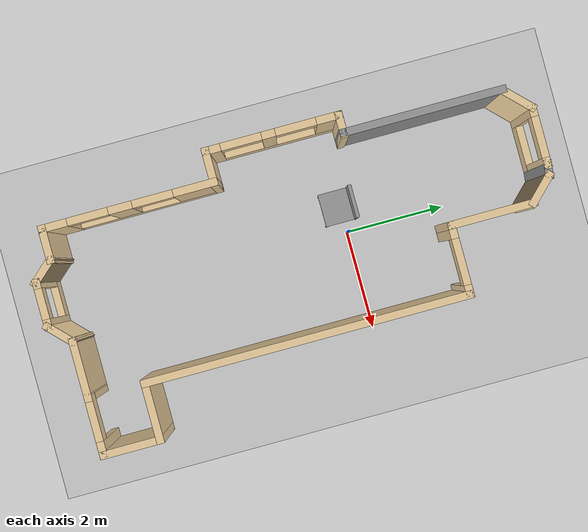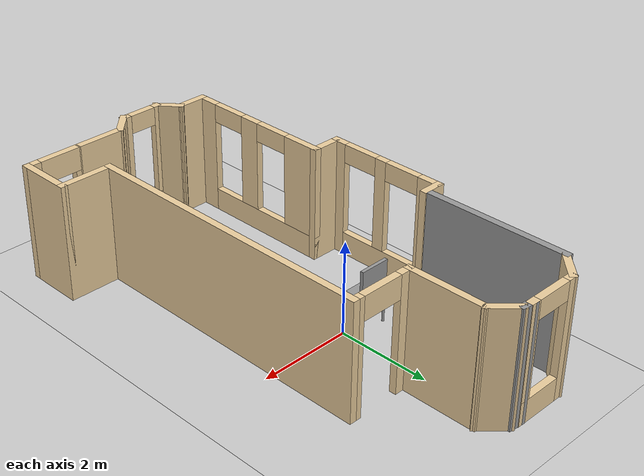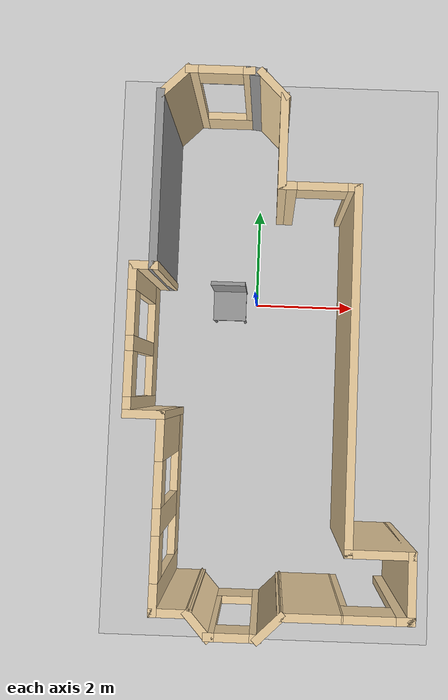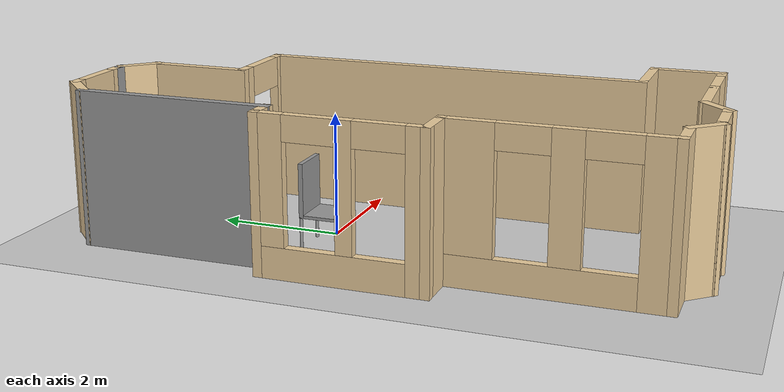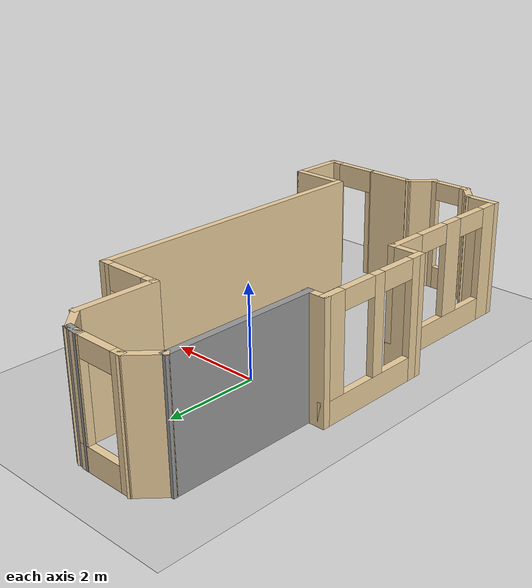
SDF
<sdf version="1.6">
 <world name="default">
  <model name="ground_plane">
   <static>1</static>
   <link name="link">
    <collision name="collision">
     <geometry><plane><normal>0 0 1</normal><size>100 100</size></plane></geometry>
     <surface>
      <contact><collide_bitmask>65535</collide_bitmask></contact>
      <friction><ode><mu>100</mu><mu2>50</mu2></ode></friction>
     </surface>
    </collision>
    <visual name="visual">
     <cast_shadows>0</cast_shadows>
     <geometry><plane><normal>0 0 1</normal><size>100 100</size></plane></geometry>
     <material>
      <script><uri>file://media/materials/scripts/gazebo.material</uri><name>Gazebo/Grey</name></script>
     </material>
    </visual>
   </link>
  </model>
  <model name="home_v4">
   <pose>0.364459 -1.06158 0 0 -0 0</pose>
   <link name="Wall_0">
    <collision name="Wall_0_Collision">
     <geometry><box><size>1.25 0.15 2.5</size></box></geometry>
     <pose>0 0 1.25 0 -0 0</pose>
    </collision>
    <visual name="Wall_0_Visual">
     <pose>0 0 1.25 0 -0 0</pose>
     <geometry><box><size>1.25 0.15 2.5</size></box></geometry>
     <material>
      <script><uri>file://media/materials/scripts/gazebo.material</uri><name>Gazebo/Grey</name></script>
      <ambient>0.921569 0.807843 0.615686 1</ambient>
     </material>
     <meta><layer>0</layer></meta>
    </visual>
    <pose>0.840711 -4.55456 0 0 -0 3.14159</pose>
   </link>
   <link name="Wall_10">
    <collision name="Wall_10_Collision">
     <geometry><box><size>0.518694 0.15 2.5</size></box></geometry>
     <pose>0 0 1.25 0 -0 0</pose>
    </collision>
    <visual name="Wall_10_Visual">
     <pose>0 0 1.25 0 -0 0</pose>
     <geometry><box><size>0.518694 0.15 2.5</size></box></geometry>
     <material>
      <script><uri>file://media/materials/scripts/gazebo.material</uri><name>Gazebo/Grey</name></script>
      <ambient>0.921569 0.807843 0.615686 1</ambient>
     </material>
     <meta><layer>0</layer></meta>
    </visual>
    <pose>-2.31992 1.39544 0 0 -0 0</pose>
   </link>
   <link name="Wall_12">
    <collision name="Wall_12_Collision">
     <geometry><box><size>3.25 0.15 2.5</size></box></geometry>
     <pose>0 0 1.25 0 -0 0</pose>
    </collision>
    <visual name="Wall_12_Visual">
     <pose>0 0 1.25 0 -0 0</pose>
     <geometry><box><size>3.25 0.15 2.5</size></box></geometry>
     <material>
      <script><uri>file://media/materials/scripts/gazebo.material</uri><name>Gazebo/Grey</name></script>
      <ambient>1 1 1 1</ambient>
     </material>
     <meta><layer>0</layer></meta>
    </visual>
    <pose>-2.1587 2.94544 0 0 -0 1.5708</pose>
   </link>
   <link name="Wall_14">
    <collision name="Wall_14_Collision">
     <geometry><box><size>0.782712 0.15 2.5</size></box></geometry>
     <pose>0 0 1.25 0 -0 0</pose>
    </collision>
    <visual name="Wall_14_Visual">
     <pose>0 0 1.25 0 -0 0</pose>
     <geometry><box><size>0.782712 0.15 2.5</size></box></geometry>
     <material>
      <script><uri>file://media/materials/scripts/gazebo.material</uri><name>Gazebo/Grey</name></script>
      <ambient>0.921569 0.807843 0.615686 1</ambient>
     </material>
     <meta><layer>0</layer></meta>
    </visual>
    <pose>-1.91187 4.71914 0 0 -0 0.785398</pose>
   </link>
   <link name="Wall_18">
    <pose>-1.11505 4.94283 0 0 -0 0</pose>
    <visual name="Wall_18_Visual_0">
     <pose>-0.508675 0 1.25 0 -0 0</pose>
     <geometry><box><size>0.23265 0.15 2.5</size></box></geometry>
     <material>
      <script><uri>file://media/materials/scripts/gazebo.material</uri><name>Gazebo/Grey</name></script>
      <ambient>0.921569 0.807843 0.615686 1</ambient>
     </material>
     <meta><layer>0</layer></meta>
    </visual>
    <collision name="Wall_18_Collision_0">
     <geometry><box><size>0.23265 0.15 2.5</size></box></geometry>
     <pose>-0.508675 0 1.25 0 -0 0</pose>
    </collision>
    <visual name="Wall_18_Visual_1">
     <pose>0.116325 0 0.25 0 -0 0</pose>
     <geometry><box><size>1.01735 0.15 0.5</size></box></geometry>
     <material>
      <script><uri>file://media/materials/scripts/gazebo.material</uri><name>Gazebo/Grey</name></script>
      <ambient>0.921569 0.807843 0.615686 1</ambient>
     </material>
     <meta><layer>0</layer></meta>
    </visual>
    <collision name="Wall_18_Collision_1">
     <geometry><box><size>1.01735 0.15 0.5</size></box></geometry>
     <pose>0.116325 0 0.25 0 -0 0</pose>
    </collision>
    <visual name="Wall_18_Visual_2">
     <pose>0.516325 0 1.5 0 -0 0</pose>
     <geometry><box><size>0.21735 0.15 2</size></box></geometry>
     <material>
      <script><uri>file://media/materials/scripts/gazebo.material</uri><name>Gazebo/Grey</name></script>
      <ambient>0.921569 0.807843 0.615686 1</ambient>
     </material>
     <meta><layer>0</layer></meta>
    </visual>
    <collision name="Wall_18_Collision_2">
     <geometry><box><size>0.21735 0.15 2</size></box></geometry>
     <pose>0.516325 0 1.5 0 -0 0</pose>
    </collision>
    <visual name="Wall_18_Visual_3">
     <pose>0.00765 0 2.3 0 -0 0</pose>
     <geometry><box><size>0.8 0.15 0.4</size></box></geometry>
     <material>
      <script><uri>file://media/materials/scripts/gazebo.material</uri><name>Gazebo/Grey</name></script>
      <ambient>0.921569 0.807843 0.615686 1</ambient>
     </material>
     <meta><layer>0</layer></meta>
    </visual>
    <collision name="Wall_18_Collision_3">
     <geometry><box><size>0.8 0.15 0.4</size></box></geometry>
     <pose>0.00765 0 2.3 0 -0 0</pose>
    </collision>
   </link>
   <link name="Wall_19">
    <collision name="Wall_19_Collision">
     <geometry><box><size>0.369398 0.15 2.5</size></box></geometry>
     <pose>0 0 1.25 0 -0 0</pose>
    </collision>
    <visual name="Wall_19_Visual">
     <pose>0 0 1.25 0 -0 0</pose>
     <geometry><box><size>0.369398 0.15 2.5</size></box></geometry>
     <material>
      <script><uri>file://media/materials/scripts/gazebo.material</uri><name>Gazebo/Grey</name></script>
      <ambient>1 1 1 1</ambient>
     </material>
     <meta><layer>0</layer></meta>
    </visual>
    <pose>-0.479088 4.93127 0 0 0 -0.105624</pose>
   </link>
   <link name="Wall_2">
    <collision name="Wall_2_Collision">
     <geometry><box><size>0.705255 0.15 2.5</size></box></geometry>
     <pose>0 0 1.25 0 -0 0</pose>
    </collision>
    <visual name="Wall_2_Visual">
     <pose>0 0 1.25 0 -0 0</pose>
     <geometry><box><size>0.705255 0.15 2.5</size></box></geometry>
     <material>
      <script><uri>file://media/materials/scripts/gazebo.material</uri><name>Gazebo/Grey</name></script>
      <ambient>0.921569 0.807843 0.615686 1</ambient>
     </material>
     <meta><layer>0</layer></meta>
    </visual>
    <pose>0.092251 -4.7487 0 0 0 -2.36719</pose>
   </link>
   <link name="Wall_20">
    <collision name="Wall_20_Collision">
     <geometry><box><size>0.75 0.15 2.5</size></box></geometry>
     <pose>0 0 1.25 0 -0 0</pose>
    </collision>
    <visual name="Wall_20_Visual">
     <pose>0 0 1.25 0 -0 0</pose>
     <geometry><box><size>0.75 0.15 2.5</size></box></geometry>
     <material>
      <script><uri>file://media/materials/scripts/gazebo.material</uri><name>Gazebo/Grey</name></script>
      <ambient>0.921569 0.807843 0.615686 1</ambient>
     </material>
     <meta><layer>0</layer></meta>
    </visual>
    <pose>-0.157868 4.70757 0 0 0 -0.785398</pose>
   </link>
   <link name="Wall_21">
    <collision name="Wall_21_Collision">
     <geometry><box><size>1.75 0.15 2.5</size></box></geometry>
     <pose>0 0 1.25 0 -0 0</pose>
    </collision>
    <visual name="Wall_21_Visual">
     <pose>0 0 1.25 0 -0 0</pose>
     <geometry><box><size>1.75 0.15 2.5</size></box></geometry>
     <material>
      <script><uri>file://media/materials/scripts/gazebo.material</uri><name>Gazebo/Grey</name></script>
      <ambient>0.921569 0.807843 0.615686 1</ambient>
     </material>
     <meta><layer>0</layer></meta>
    </visual>
    <pose>0.054264 3.69544 0 0 0 -1.5708</pose>
   </link>
   <link name="Wall_22">
    <pose>0.729264 2.89544 0 0 -0 0</pose>
    <visual name="Wall_22_Visual_0">
     <pose>-0.581037 0 1.25 0 -0 0</pose>
     <geometry><box><size>0.337926 0.15 2.5</size></box></geometry>
     <material>
      <script><uri>file://media/materials/scripts/gazebo.material</uri><name>Gazebo/Grey</name></script>
      <ambient>0.921569 0.807843 0.615686 1</ambient>
     </material>
     <meta><layer>0</layer></meta>
    </visual>
    <collision name="Wall_22_Collision_0">
     <geometry><box><size>0.337926 0.15 2.5</size></box></geometry>
     <pose>-0.581037 0 1.25 0 -0 0</pose>
    </collision>
    <visual name="Wall_22_Visual_1">
     <pose>0.618963 0 1.25 0 -0 0</pose>
     <geometry><box><size>0.262074 0.15 2.5</size></box></geometry>
     <material>
      <script><uri>file://media/materials/scripts/gazebo.material</uri><name>Gazebo/Grey</name></script>
      <ambient>0.921569 0.807843 0.615686 1</ambient>
     </material>
     <meta><layer>0</layer></meta>
    </visual>
    <collision name="Wall_22_Collision_1">
     <geometry><box><size>0.262074 0.15 2.5</size></box></geometry>
     <pose>0.618963 0 1.25 0 -0 0</pose>
    </collision>
    <visual name="Wall_22_Visual_2">
     <pose>0.037926 0 2.25 0 -0 0</pose>
     <geometry><box><size>0.9 0.15 0.5</size></box></geometry>
     <material>
      <script><uri>file://media/materials/scripts/gazebo.material</uri><name>Gazebo/Grey</name></script>
      <ambient>0.921569 0.807843 0.615686 1</ambient>
     </material>
     <meta><layer>0</layer></meta>
    </visual>
    <collision name="Wall_22_Collision_2">
     <geometry><box><size>0.9 0.15 0.5</size></box></geometry>
     <pose>0.037926 0 2.25 0 -0 0</pose>
    </collision>
   </link>
   <link name="Wall_24">
    <collision name="Wall_24_Collision">
     <geometry><box><size>6.5 0.15 2.5</size></box></geometry>
     <pose>0 0 1.25 0 -0 0</pose>
    </collision>
    <visual name="Wall_24_Visual">
     <pose>0 0 1.25 0 -0 0</pose>
     <geometry><box><size>6.5 0.15 2.5</size></box></geometry>
     <material>
      <script><uri>file://media/materials/scripts/gazebo.material</uri><name>Gazebo/Grey</name></script>
      <ambient>0.921569 0.807843 0.615686 1</ambient>
     </material>
     <meta><layer>0</layer></meta>
    </visual>
    <pose>1.40426 -0.279559 0 0 0 -1.5708</pose>
   </link>
   <link name="Wall_25">
    <collision name="Wall_25_Collision">
     <geometry><box><size>1.25 0.15 2.5</size></box></geometry>
     <pose>0 0 1.25 0 -0 0</pose>
    </collision>
    <visual name="Wall_25_Visual">
     <pose>0 0 1.25 0 -0 0</pose>
     <geometry><box><size>1.25 0.15 2.5</size></box></geometry>
     <material>
      <script><uri>file://media/materials/scripts/gazebo.material</uri><name>Gazebo/Grey</name></script>
      <ambient>0.921569 0.807843 0.615686 1</ambient>
     </material>
     <meta><layer>0</layer></meta>
    </visual>
    <pose>1.95426 -3.45456 0 0 -0 0</pose>
   </link>
   <link name="Wall_27">
    <collision name="Wall_27_Collision">
     <geometry><box><size>1.25 0.15 2.5</size></box></geometry>
     <pose>0 0 1.25 0 -0 0</pose>
    </collision>
    <visual name="Wall_27_Visual">
     <pose>0 0 1.25 0 -0 0</pose>
     <geometry><box><size>1.25 0.15 2.5</size></box></geometry>
     <material>
      <script><uri>file://media/materials/scripts/gazebo.material</uri><name>Gazebo/Grey</name></script>
      <ambient>0.921569 0.807843 0.615686 1</ambient>
     </material>
     <meta><layer>0</layer></meta>
    </visual>
    <pose>2.50426 -4.00456 0 0 0 -1.5708</pose>
   </link>
   <link name="Wall_28">
    <pose>1.94749 -4.55456 0 0 -0 3.14159</pose>
    <visual name="Wall_28_Visual_0">
     <pose>-0.463636 0 1.25 0 -0 0</pose>
     <geometry><box><size>0.336282 0.15 2.5</size></box></geometry>
     <material>
      <script><uri>file://media/materials/scripts/gazebo.material</uri><name>Gazebo/Grey</name></script>
      <ambient>0.921569 0.807843 0.615686 1</ambient>
     </material>
     <meta><layer>0</layer></meta>
    </visual>
    <collision name="Wall_28_Collision_0">
     <geometry><box><size>0.336282 0.15 2.5</size></box></geometry>
     <pose>-0.463636 0 1.25 0 -0 0</pose>
    </collision>
    <visual name="Wall_28_Visual_1">
     <pose>0.618141 0 1.25 0 -0 0</pose>
     <geometry><box><size>0.027271 0.15 2.5</size></box></geometry>
     <material>
      <script><uri>file://media/materials/scripts/gazebo.material</uri><name>Gazebo/Grey</name></script>
      <ambient>0.921569 0.807843 0.615686 1</ambient>
     </material>
     <meta><layer>0</layer></meta>
    </visual>
    <collision name="Wall_28_Collision_1">
     <geometry><box><size>0.027271 0.15 2.5</size></box></geometry>
     <pose>0.618141 0 1.25 0 -0 0</pose>
    </collision>
    <visual name="Wall_28_Visual_2">
     <pose>0.154505 0 2.25 0 -0 0</pose>
     <geometry><box><size>0.9 0.15 0.5</size></box></geometry>
     <material>
      <script><uri>file://media/materials/scripts/gazebo.material</uri><name>Gazebo/Grey</name></script>
      <ambient>0.921569 0.807843 0.615686 1</ambient>
     </material>
     <meta><layer>0</layer></meta>
    </visual>
    <collision name="Wall_28_Collision_2">
     <geometry><box><size>0.9 0.15 0.5</size></box></geometry>
     <pose>0.154505 0 2.25 0 -0 0</pose>
    </collision>
   </link>
   <link name="Wall_3">
    <pose>-0.531209 -4.92273 0 0 -0 3.14159</pose>
    <visual name="Wall_3_Visual_0">
     <pose>-0.395508 0 1.25 0 -0 0</pose>
     <geometry><box><size>0.208983 0.15 2.5</size></box></geometry>
     <material>
      <script><uri>file://media/materials/scripts/gazebo.material</uri><name>Gazebo/Grey</name></script>
      <ambient>0.921569 0.807843 0.615686 1</ambient>
     </material>
     <meta><layer>0</layer></meta>
    </visual>
    <collision name="Wall_3_Collision_0">
     <geometry><box><size>0.208983 0.15 2.5</size></box></geometry>
     <pose>-0.395508 0 1.25 0 -0 0</pose>
    </collision>
    <visual name="Wall_3_Visual_1">
     <pose>0.104492 0 0.25 0 -0 0</pose>
     <geometry><box><size>0.791017 0.15 0.5</size></box></geometry>
     <material>
      <script><uri>file://media/materials/scripts/gazebo.material</uri><name>Gazebo/Grey</name></script>
      <ambient>0.921569 0.807843 0.615686 1</ambient>
     </material>
     <meta><layer>0</layer></meta>
    </visual>
    <collision name="Wall_3_Collision_1">
     <geometry><box><size>0.791017 0.15 0.5</size></box></geometry>
     <pose>0.104492 0 0.25 0 -0 0</pose>
    </collision>
    <visual name="Wall_3_Visual_2">
     <pose>0.404492 0 1.5 0 -0 0</pose>
     <geometry><box><size>0.191017 0.15 2</size></box></geometry>
     <material>
      <script><uri>file://media/materials/scripts/gazebo.material</uri><name>Gazebo/Grey</name></script>
      <ambient>0.921569 0.807843 0.615686 1</ambient>
     </material>
     <meta><layer>0</layer></meta>
    </visual>
    <collision name="Wall_3_Collision_2">
     <geometry><box><size>0.191017 0.15 2</size></box></geometry>
     <pose>0.404492 0 1.5 0 -0 0</pose>
    </collision>
    <visual name="Wall_3_Visual_3">
     <pose>0.008983 0 2.3 0 -0 0</pose>
     <geometry><box><size>0.6 0.15 0.4</size></box></geometry>
     <material>
      <script><uri>file://media/materials/scripts/gazebo.material</uri><name>Gazebo/Grey</name></script>
      <ambient>0.921569 0.807843 0.615686 1</ambient>
     </material>
     <meta><layer>0</layer></meta>
    </visual>
    <collision name="Wall_3_Collision_3">
     <geometry><box><size>0.6 0.15 0.4</size></box></geometry>
     <pose>0.008983 0 2.3 0 -0 0</pose>
    </collision>
   </link>
   <link name="Wall_4">
    <collision name="Wall_4_Collision">
     <geometry><box><size>0.671446 0.15 2.5</size></box></geometry>
     <pose>0 0 1.25 0 -0 0</pose>
    </collision>
    <visual name="Wall_4_Visual">
     <pose>0 0 1.25 0 -0 0</pose>
     <geometry><box><size>0.671446 0.15 2.5</size></box></geometry>
     <material>
      <script><uri>file://media/materials/scripts/gazebo.material</uri><name>Gazebo/Grey</name></script>
      <ambient>0.921569 0.807843 0.615686 1</ambient>
     </material>
     <meta><layer>0</layer></meta>
    </visual>
    <pose>-1.13024 -4.7487 0 0 -0 2.30162</pose>
   </link>
   <link name="Wall_5">
    <collision name="Wall_5_Collision">
     <geometry><box><size>0.75 0.15 2.5</size></box></geometry>
     <pose>0 0 1.25 0 -0 0</pose>
    </collision>
    <visual name="Wall_5_Visual">
     <pose>0 0 1.25 0 -0 0</pose>
     <geometry><box><size>0.75 0.15 2.5</size></box></geometry>
     <material>
      <script><uri>file://media/materials/scripts/gazebo.material</uri><name>Gazebo/Grey</name></script>
      <ambient>0.921569 0.807843 0.615686 1</ambient>
     </material>
     <meta><layer>0</layer></meta>
    </visual>
    <pose>-1.60426 -4.55456 0 0 -0 3.14159</pose>
   </link>
   <link name="Wall_6">
    <pose>-1.90426 -2.87956 0 0 -0 1.5708</pose>
    <visual name="Wall_6_Visual_0">
     <pose>-1.47 0 1.25 0 -0 0</pose>
     <geometry><box><size>0.559997 0.15 2.5</size></box></geometry>
     <material>
      <script><uri>file://media/materials/scripts/gazebo.material</uri><name>Gazebo/Grey</name></script>
      <ambient>0.921569 0.807843 0.615686 1</ambient>
     </material>
     <meta><layer>0</layer></meta>
    </visual>
    <collision name="Wall_6_Collision_0">
     <geometry><box><size>0.559997 0.15 2.5</size></box></geometry>
     <pose>-1.47 0 1.25 0 -0 0</pose>
    </collision>
    <visual name="Wall_6_Visual_1">
     <pose>0.279999 0 0.25 0 -0 0</pose>
     <geometry><box><size>2.94 0.15 0.5</size></box></geometry>
     <material>
      <script><uri>file://media/materials/scripts/gazebo.material</uri><name>Gazebo/Grey</name></script>
      <ambient>0.921569 0.807843 0.615686 1</ambient>
     </material>
     <meta><layer>0</layer></meta>
    </visual>
    <collision name="Wall_6_Collision_1">
     <geometry><box><size>2.94 0.15 0.5</size></box></geometry>
     <pose>0.279999 0 0.25 0 -0 0</pose>
    </collision>
    <visual name="Wall_6_Visual_2">
     <pose>-0.156425 0 1.5 0 -0 0</pose>
     <geometry><box><size>0.467155 0.15 2</size></box></geometry>
     <material>
      <script><uri>file://media/materials/scripts/gazebo.material</uri><name>Gazebo/Grey</name></script>
      <ambient>0.921569 0.807843 0.615686 1</ambient>
     </material>
     <meta><layer>0</layer></meta>
    </visual>
    <collision name="Wall_6_Collision_2">
     <geometry><box><size>0.467155 0.15 2</size></box></geometry>
     <pose>-0.156425 0 1.5 0 -0 0</pose>
    </collision>
    <visual name="Wall_6_Visual_3">
     <pose>1.31358 0 1.5 0 -0 0</pose>
     <geometry><box><size>0.872848 0.15 2</size></box></geometry>
     <material>
      <script><uri>file://media/materials/scripts/gazebo.material</uri><name>Gazebo/Grey</name></script>
      <ambient>0.921569 0.807843 0.615686 1</ambient>
     </material>
     <meta><layer>0</layer></meta>
    </visual>
    <collision name="Wall_6_Collision_3">
     <geometry><box><size>0.872848 0.15 2</size></box></geometry>
     <pose>1.31358 0 1.5 0 -0 0</pose>
    </collision>
    <visual name="Wall_6_Visual_4">
     <pose>-0.790003 0 2.3 0 -0 0</pose>
     <geometry><box><size>0.8 0.15 0.4</size></box></geometry>
     <material>
      <script><uri>file://media/materials/scripts/gazebo.material</uri><name>Gazebo/Grey</name></script>
      <ambient>0.921569 0.807843 0.615686 1</ambient>
     </material>
     <meta><layer>0</layer></meta>
    </visual>
    <collision name="Wall_6_Collision_4">
     <geometry><box><size>0.8 0.15 0.4</size></box></geometry>
     <pose>-0.790003 0 2.3 0 -0 0</pose>
    </collision>
    <visual name="Wall_6_Visual_5">
     <pose>0.477152 0 2.3 0 -0 0</pose>
     <geometry><box><size>0.8 0.15 0.4</size></box></geometry>
     <material>
      <script><uri>file://media/materials/scripts/gazebo.material</uri><name>Gazebo/Grey</name></script>
      <ambient>0.921569 0.807843 0.615686 1</ambient>
     </material>
     <meta><layer>0</layer></meta>
    </visual>
    <collision name="Wall_6_Collision_5">
     <geometry><box><size>0.8 0.15 0.4</size></box></geometry>
     <pose>0.477152 0 2.3 0 -0 0</pose>
    </collision>
   </link>
   <link name="Wall_8">
    <collision name="Wall_8_Collision">
     <geometry><box><size>0.75 0.15 2.5</size></box></geometry>
     <pose>0 0 1.25 0 -0 0</pose>
    </collision>
    <visual name="Wall_8_Visual">
     <pose>0 0 1.25 0 -0 0</pose>
     <geometry><box><size>0.75 0.15 2.5</size></box></geometry>
     <material>
      <script><uri>file://media/materials/scripts/gazebo.material</uri><name>Gazebo/Grey</name></script>
      <ambient>0.921569 0.807843 0.615686 1</ambient>
     </material>
     <meta><layer>0</layer></meta>
    </visual>
    <pose>-2.20426 -1.20456 0 0 -0 3.14159</pose>
   </link>
   <link name="Wall_9">
    <pose>-2.50426 0.095441 0 0 -0 1.5708</pose>
    <visual name="Wall_9_Visual_0">
     <pose>-1.19109 0 1.25 0 -0 0</pose>
     <geometry><box><size>0.367828 0.15 2.5</size></box></geometry>
     <material>
      <script><uri>file://media/materials/scripts/gazebo.material</uri><name>Gazebo/Grey</name></script>
      <ambient>0.921569 0.807843 0.615686 1</ambient>
     </material>
     <meta><layer>0</layer></meta>
    </visual>
    <collision name="Wall_9_Collision_0">
     <geometry><box><size>0.367828 0.15 2.5</size></box></geometry>
     <pose>-1.19109 0 1.25 0 -0 0</pose>
    </collision>
    <visual name="Wall_9_Visual_1">
     <pose>0.183914 0 0.25 0 -0 0</pose>
     <geometry><box><size>2.38217 0.15 0.5</size></box></geometry>
     <material>
      <script><uri>file://media/materials/scripts/gazebo.material</uri><name>Gazebo/Grey</name></script>
      <ambient>0.921569 0.807843 0.615686 1</ambient>
     </material>
     <meta><layer>0</layer></meta>
    </visual>
    <collision name="Wall_9_Collision_1">
     <geometry><box><size>2.38217 0.15 0.5</size></box></geometry>
     <pose>0.183914 0 0.25 0 -0 0</pose>
    </collision>
    <visual name="Wall_9_Visual_2">
     <pose>-0.074162 0 1.5 0 -0 0</pose>
     <geometry><box><size>0.266019 0.15 2</size></box></geometry>
     <material>
      <script><uri>file://media/materials/scripts/gazebo.material</uri><name>Gazebo/Grey</name></script>
      <ambient>0.921569 0.807843 0.615686 1</ambient>
     </material>
     <meta><layer>0</layer></meta>
    </visual>
    <collision name="Wall_9_Collision_2">
     <geometry><box><size>0.266019 0.15 2</size></box></geometry>
     <pose>-0.074162 0 1.5 0 -0 0</pose>
    </collision>
    <visual name="Wall_9_Visual_3">
     <pose>1.11692 0 1.5 0 -0 0</pose>
     <geometry><box><size>0.516153 0.15 2</size></box></geometry>
     <material>
      <script><uri>file://media/materials/scripts/gazebo.material</uri><name>Gazebo/Grey</name></script>
      <ambient>0.921569 0.807843 0.615686 1</ambient>
     </material>
     <meta><layer>0</layer></meta>
    </visual>
    <collision name="Wall_9_Collision_3">
     <geometry><box><size>0.516153 0.15 2</size></box></geometry>
     <pose>1.11692 0 1.5 0 -0 0</pose>
    </collision>
    <visual name="Wall_9_Visual_4">
     <pose>-0.607172 0 2.3 0 -0 0</pose>
     <geometry><box><size>0.8 0.15 0.4</size></box></geometry>
     <material>
      <script><uri>file://media/materials/scripts/gazebo.material</uri><name>Gazebo/Grey</name></script>
      <ambient>0.921569 0.807843 0.615686 1</ambient>
     </material>
     <meta><layer>0</layer></meta>
    </visual>
    <collision name="Wall_9_Collision_4">
     <geometry><box><size>0.8 0.15 0.4</size></box></geometry>
     <pose>-0.607172 0 2.3 0 -0 0</pose>
    </collision>
    <visual name="Wall_9_Visual_5">
     <pose>0.458847 0 2.3 0 -0 0</pose>
     <geometry><box><size>0.8 0.15 0.4</size></box></geometry>
     <material>
      <script><uri>file://media/materials/scripts/gazebo.material</uri><name>Gazebo/Grey</name></script>
      <ambient>0.921569 0.807843 0.615686 1</ambient>
     </material>
     <meta><layer>0</layer></meta>
    </visual>
    <collision name="Wall_9_Collision_5">
     <geometry><box><size>0.8 0.15 0.4</size></box></geometry>
     <pose>0.458847 0 2.3 0 -0 0</pose>
    </collision>
   </link>
   <static>1</static>
  </model>
  <model name="chair2_clone">
   <link name="link_12">
    <pose>0.315657 -2.84973 0.453284 0 -0 0</pose>
    <inertial>
     <mass>0.0218595</mass>
     <inertia>
      <ixx>0.00079758</ixx>
      <ixy>0</ixy>
      <ixz>0</ixz>
      <iyy>0.00079758</iyy>
      <iyz>0</iyz>
      <izz>0.001587</izz>
     </inertia>
    </inertial>
    <visual name="visual">
     <geometry><box><size>0.66 0.66 0.047346</size></box></geometry>
     <material>
      <lighting>1</lighting>
      <script><uri>file://media/materials/scripts/gazebo.material</uri><name>Gazebo/Grey</name></script>
      <shader type="pixel"><normal_map>__default__</normal_map></shader>
      <ambient>0.3 0.3 0.3 1</ambient>
      <diffuse>0.7 0.7 0.7 1</diffuse>
      <specular>0.01 0.01 0.01 1</specular>
      <emissive>0 0 0 1</emissive>
     </material>
    </visual>
    <collision name="collision">
     <geometry><box><size>0.66 0.66 0.047346</size></box></geometry>
     <surface>
      <friction>
       <ode><mu>1</mu><mu2>1</mu2><fdir1>0 0 0</fdir1><slip1>0</slip1><slip2>0</slip2></ode>
       <torsional>
        <coefficient>1</coefficient>
        <patch_radius>0</patch_radius>
        <surface_radius>0</surface_radius>
        <use_patch_radius>1</use_patch_radius>
        <ode><slip>0</slip></ode>
       </torsional>
      </friction>
      <bounce><restitution_coefficient>0</restitution_coefficient><threshold>1e+06</threshold></bounce>
      <contact>
       <collide_without_contact>0</collide_without_contact>
       <collide_without_contact_bitmask>1</collide_without_contact_bitmask>
       <collide_bitmask>1</collide_bitmask>
       <ode>
        <soft_cfm>0</soft_cfm>
        <soft_erp>0.2</soft_erp>
        <kp>1e+13</kp>
        <kd>1</kd>
        <max_vel>0.01</max_vel>
        <min_depth>0</min_depth>
       </ode>
       <bullet>
        <split_impulse>1</split_impulse>
        <split_impulse_penetration_threshold>-0.01</split_impulse_penetration_threshold>
        <soft_cfm>0</soft_cfm>
        <soft_erp>0.2</soft_erp>
        <kp>1e+13</kp>
        <kd>1</kd>
       </bullet>
      </contact>
     </surface>
    </collision>
   </link>
   <link name="link_13">
    <pose>0.011338 -3.15405 0.177779 0 -0 0</pose>
    <inertial>
     <mass>0.00133056</mass>
     <inertia>
      <ixx>2.83472e-05</ixx>
      <ixy>0</ixy>
      <ixz>0</ixz>
      <iyy>2.83472e-05</iyy>
      <iyz>0</iyz>
      <izz>4.38741e-07</izz>
     </inertia>
    </inertial>
    <visual name="visual">
     <geometry><cylinder><radius>0.0256804</radius><length>0.503665</length></cylinder></geometry>
     <material>
      <lighting>1</lighting>
      <script><uri>file://media/materials/scripts/gazebo.material</uri><name>Gazebo/Grey</name></script>
      <shader type="pixel"/>
      <ambient>0.3 0.3 0.3 1</ambient>
      <diffuse>0.7 0.7 0.7 1</diffuse>
      <specular>0.01 0.01 0.01 1</specular>
      <emissive>0 0 0 1</emissive>
     </material>
    </visual>
    <collision name="collision">
     <geometry><cylinder><radius>0.02568</radius><length>0.503665</length></cylinder></geometry>
     <surface>
      <friction>
       <ode><mu>1</mu><mu2>1</mu2><fdir1>0 0 0</fdir1><slip1>0</slip1><slip2>0</slip2></ode>
       <torsional>
        <coefficient>1</coefficient>
        <patch_radius>0</patch_radius>
        <surface_radius>0</surface_radius>
        <use_patch_radius>1</use_patch_radius>
        <ode><slip>0</slip></ode>
       </torsional>
      </friction>
      <bounce><restitution_coefficient>0</restitution_coefficient><threshold>1e+06</threshold></bounce>
      <contact>
       <collide_without_contact>0</collide_without_contact>
       <collide_without_contact_bitmask>1</collide_without_contact_bitmask>
       <collide_bitmask>1</collide_bitmask>
       <ode>
        <soft_cfm>0</soft_cfm>
        <soft_erp>0.2</soft_erp>
        <kp>1e+13</kp>
        <kd>1</kd>
        <max_vel>0.01</max_vel>
        <min_depth>0</min_depth>
       </ode>
       <bullet>
        <split_impulse>1</split_impulse>
        <split_impulse_penetration_threshold>-0.01</split_impulse_penetration_threshold>
        <soft_cfm>0</soft_cfm>
        <soft_erp>0.2</soft_erp>
        <kp>1e+13</kp>
        <kd>1</kd>
       </bullet>
      </contact>
     </surface>
    </collision>
   </link>
   <link name="link_13_clone">
    <pose>0.619977 -3.15405 0.177779 0 -0 0</pose>
    <inertial>
     <mass>0.00133056</mass>
     <inertia>
      <ixx>2.83472e-05</ixx>
      <ixy>0</ixy>
      <ixz>0</ixz>
      <iyy>2.83472e-05</iyy>
      <iyz>0</iyz>
      <izz>4.38741e-07</izz>
     </inertia>
    </inertial>
    <visual name="visual">
     <geometry><cylinder><radius>0.0256804</radius><length>0.503665</length></cylinder></geometry>
     <material>
      <lighting>1</lighting>
      <script><uri>file://media/materials/scripts/gazebo.material</uri><name>Gazebo/Grey</name></script>
      <shader type="pixel"/>
      <ambient>0.3 0.3 0.3 1</ambient>
      <diffuse>0.7 0.7 0.7 1</diffuse>
      <specular>0.01 0.01 0.01 1</specular>
      <emissive>0 0 0 1</emissive>
     </material>
    </visual>
    <collision name="collision">
     <geometry><cylinder><radius>0.02568</radius><length>0.503665</length></cylinder></geometry>
     <surface>
      <friction>
       <ode><mu>1</mu><mu2>1</mu2><fdir1>0 0 0</fdir1><slip1>0</slip1><slip2>0</slip2></ode>
       <torsional>
        <coefficient>1</coefficient>
        <patch_radius>0</patch_radius>
        <surface_radius>0</surface_radius>
        <use_patch_radius>1</use_patch_radius>
        <ode><slip>0</slip></ode>
       </torsional>
      </friction>
      <bounce><restitution_coefficient>0</restitution_coefficient><threshold>1e+06</threshold></bounce>
      <contact>
       <collide_without_contact>0</collide_without_contact>
       <collide_without_contact_bitmask>1</collide_without_contact_bitmask>
       <collide_bitmask>1</collide_bitmask>
       <ode>
        <soft_cfm>0</soft_cfm>
        <soft_erp>0.2</soft_erp>
        <kp>1e+13</kp>
        <kd>1</kd>
        <max_vel>0.01</max_vel>
        <min_depth>0</min_depth>
       </ode>
       <bullet>
        <split_impulse>1</split_impulse>
        <split_impulse_penetration_threshold>-0.01</split_impulse_penetration_threshold>
        <soft_cfm>0</soft_cfm>
        <soft_erp>0.2</soft_erp>
        <kp>1e+13</kp>
        <kd>1</kd>
       </bullet>
      </contact>
     </surface>
    </collision>
   </link>
   <link name="link_13_clone_0">
    <pose>0.619977 -2.54541 0.177779 0 -0 0</pose>
    <inertial>
     <mass>0.00133056</mass>
     <inertia>
      <ixx>2.83472e-05</ixx>
      <ixy>0</ixy>
      <ixz>0</ixz>
      <iyy>2.83472e-05</iyy>
      <iyz>0</iyz>
      <izz>4.38741e-07</izz>
     </inertia>
    </inertial>
    <visual name="visual">
     <geometry><cylinder><radius>0.0256804</radius><length>0.503665</length></cylinder></geometry>
     <material>
      <lighting>1</lighting>
      <script><uri>file://media/materials/scripts/gazebo.material</uri><name>Gazebo/Grey</name></script>
      <shader type="pixel"/>
      <ambient>0.3 0.3 0.3 1</ambient>
      <diffuse>0.7 0.7 0.7 1</diffuse>
      <specular>0.01 0.01 0.01 1</specular>
      <emissive>0 0 0 1</emissive>
     </material>
    </visual>
    <collision name="collision">
     <geometry><cylinder><radius>0.02568</radius><length>0.503665</length></cylinder></geometry>
     <surface>
      <friction>
       <ode><mu>1</mu><mu2>1</mu2><fdir1>0 0 0</fdir1><slip1>0</slip1><slip2>0</slip2></ode>
       <torsional>
        <coefficient>1</coefficient>
        <patch_radius>0</patch_radius>
        <surface_radius>0</surface_radius>
        <use_patch_radius>1</use_patch_radius>
        <ode><slip>0</slip></ode>
       </torsional>
      </friction>
      <bounce><restitution_coefficient>0</restitution_coefficient><threshold>1e+06</threshold></bounce>
      <contact>
       <collide_without_contact>0</collide_without_contact>
       <collide_without_contact_bitmask>1</collide_without_contact_bitmask>
       <collide_bitmask>1</collide_bitmask>
       <ode>
        <soft_cfm>0</soft_cfm>
        <soft_erp>0.2</soft_erp>
        <kp>1e+13</kp>
        <kd>1</kd>
        <max_vel>0.01</max_vel>
        <min_depth>0</min_depth>
       </ode>
       <bullet>
        <split_impulse>1</split_impulse>
        <split_impulse_penetration_threshold>-0.01</split_impulse_penetration_threshold>
        <soft_cfm>0</soft_cfm>
        <soft_erp>0.2</soft_erp>
        <kp>1e+13</kp>
        <kd>1</kd>
       </bullet>
      </contact>
     </surface>
    </collision>
   </link>
   <link name="link_13_clone_0_clone">
    <pose>0.011338 -2.54541 0.177779 0 -0 0</pose>
    <inertial>
     <mass>0.00133056</mass>
     <inertia>
      <ixx>2.83472e-05</ixx>
      <ixy>0</ixy>
      <ixz>0</ixz>
      <iyy>2.83472e-05</iyy>
      <iyz>0</iyz>
      <izz>4.38741e-07</izz>
     </inertia>
    </inertial>
    <visual name="visual">
     <geometry><cylinder><radius>0.0256804</radius><length>0.503665</length></cylinder></geometry>
     <material>
      <lighting>1</lighting>
      <script><uri>file://media/materials/scripts/gazebo.material</uri><name>Gazebo/Grey</name></script>
      <shader type="pixel"/>
      <ambient>0.3 0.3 0.3 1</ambient>
      <diffuse>0.7 0.7 0.7 1</diffuse>
      <specular>0.01 0.01 0.01 1</specular>
      <emissive>0 0 0 1</emissive>
     </material>
    </visual>
    <collision name="collision">
     <geometry><cylinder><radius>0.02568</radius><length>0.503665</length></cylinder></geometry>
     <surface>
      <friction>
       <ode><mu>1</mu><mu2>1</mu2><fdir1>0 0 0</fdir1><slip1>0</slip1><slip2>0</slip2></ode>
       <torsional>
        <coefficient>1</coefficient>
        <patch_radius>0</patch_radius>
        <surface_radius>0</surface_radius>
        <use_patch_radius>1</use_patch_radius>
        <ode><slip>0</slip></ode>
       </torsional>
      </friction>
      <bounce><restitution_coefficient>0</restitution_coefficient><threshold>1e+06</threshold></bounce>
      <contact>
       <collide_without_contact>0</collide_without_contact>
       <collide_without_contact_bitmask>1</collide_without_contact_bitmask>
       <collide_bitmask>1</collide_bitmask>
       <ode>
        <soft_cfm>0</soft_cfm>
        <soft_erp>0.2</soft_erp>
        <kp>1e+13</kp>
        <kd>1</kd>
        <max_vel>0.01</max_vel>
        <min_depth>0</min_depth>
       </ode>
       <bullet>
        <split_impulse>1</split_impulse>
        <split_impulse_penetration_threshold>-0.01</split_impulse_penetration_threshold>
        <soft_cfm>0</soft_cfm>
        <soft_erp>0.2</soft_erp>
        <kp>1e+13</kp>
        <kd>1</kd>
       </bullet>
      </contact>
     </surface>
    </collision>
   </link>
   <link name="link_14">
    <pose>0.315657 -3.14339 0.868122 0 -0 0</pose>
    <inertial>
     <mass>0.0453051</mass>
     <inertia>
      <ixx>0.00292386</ixx>
      <ixy>0</ixy>
      <ixz>0</ixz>
      <iyy>0.0045485</iyy>
      <iyz>0</iyz>
      <izz>0.00166451</izz>
     </inertia>
    </inertial>
    <visual name="visual">
     <geometry><box><size>0.66 0.072671 0.877021</size></box></geometry>
     <material>
      <lighting>1</lighting>
      <script><uri>file://media/materials/scripts/gazebo.material</uri><name>Gazebo/Grey</name></script>
      <shader type="pixel"><normal_map>__default__</normal_map></shader>
      <ambient>0.3 0.3 0.3 1</ambient>
      <diffuse>0.7 0.7 0.7 1</diffuse>
      <specular>0.01 0.01 0.01 1</specular>
      <emissive>0 0 0 1</emissive>
     </material>
    </visual>
    <collision name="collision">
     <geometry><box><size>0.66 0.072671 0.877021</size></box></geometry>
     <surface>
      <friction>
       <ode><mu>1</mu><mu2>1</mu2><fdir1>0 0 0</fdir1><slip1>0</slip1><slip2>0</slip2></ode>
       <torsional>
        <coefficient>1</coefficient>
        <patch_radius>0</patch_radius>
        <surface_radius>0</surface_radius>
        <use_patch_radius>1</use_patch_radius>
        <ode><slip>0</slip></ode>
       </torsional>
      </friction>
      <bounce><restitution_coefficient>0</restitution_coefficient><threshold>1e+06</threshold></bounce>
      <contact>
       <collide_without_contact>0</collide_without_contact>
       <collide_without_contact_bitmask>1</collide_without_contact_bitmask>
       <collide_bitmask>1</collide_bitmask>
       <ode>
        <soft_cfm>0</soft_cfm>
        <soft_erp>0.2</soft_erp>
        <kp>1e+13</kp>
        <kd>1</kd>
        <max_vel>0.01</max_vel>
        <min_depth>0</min_depth>
       </ode>
       <bullet>
        <split_impulse>1</split_impulse>
        <split_impulse_penetration_threshold>-0.01</split_impulse_penetration_threshold>
        <soft_cfm>0</soft_cfm>
        <soft_erp>0.2</soft_erp>
        <kp>1e+13</kp>
        <kd>1</kd>
       </bullet>
      </contact>
     </surface>
    </collision>
   </link>
   <joint name="link_12_JOINT_4" type="fixed">
    <parent>link_12</parent>
    <child>link_13</child>
    <physics>
     <ode><limit><cfm>0</cfm><erp>0.2</erp></limit><suspension><cfm>0</cfm><erp>0.2</erp></suspension></ode>
    </physics>
   </joint>
   <joint name="link_12_JOINT_5" type="fixed">
    <parent>link_12</parent>
    <child>link_13_clone</child>
    <physics>
     <ode><limit><cfm>0</cfm><erp>0.2</erp></limit><suspension><cfm>0</cfm><erp>0.2</erp></suspension></ode>
    </physics>
   </joint>
   <joint name="link_12_JOINT_6" type="fixed">
    <parent>link_12</parent>
    <child>link_13_clone_0</child>
    <physics>
     <ode><limit><cfm>0</cfm><erp>0.2</erp></limit><suspension><cfm>0</cfm><erp>0.2</erp></suspension></ode>
    </physics>
   </joint>
   <joint name="link_12_JOINT_7" type="fixed">
    <parent>link_12</parent>
    <child>link_13_clone_0_clone</child>
    <physics>
     <ode><limit><cfm>0</cfm><erp>0.2</erp></limit><suspension><cfm>0</cfm><erp>0.2</erp></suspension></ode>
    </physics>
   </joint>
   <joint name="link_12_JOINT_8" type="fixed">
    <parent>link_12</parent>
    <child>link_14</child>
    <physics>
     <ode><limit><cfm>0</cfm><erp>0.2</erp></limit><suspension><cfm>0</cfm><erp>0.2</erp></suspension></ode>
    </physics>
   </joint>
   <static>0</static>
   <pose>-0.211439 -2.91015 0.074522 0.000189 -1e-06 -3.13787</pose>
  </model>
 </world>
</sdf>
